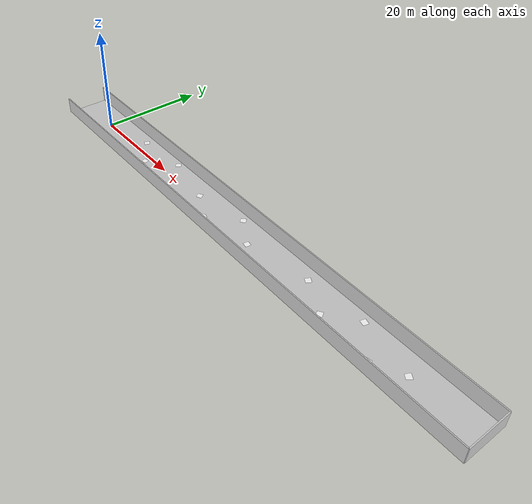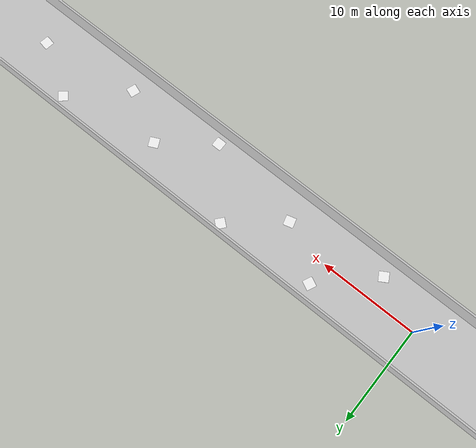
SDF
<?xml version="1.0" ?>
<sdf version="1.9">
  <world name="default">

    <physics name="1ms" type="ignore">
      <max_step_size>0.001</max_step_size>
      <real_time_factor>1.0</real_time_factor>
    </physics>

    <plugin filename="gz-sim-physics-system"
      name="gz::sim::systems::Physics">
    </plugin>

    <plugin
      filename="gz-sim-sensors-system"
      name="gz::sim::systems::Sensors">
      <render_engine>ogre2</render_engine>
    </plugin>

    <plugin filename="gz-sim-user-commands-system"
      name="gz::sim::systems::UserCommands">
    </plugin>
    <plugin filename="gz-sim-scene-broadcaster-system"
      name="gz::sim::systems::SceneBroadcaster">
    </plugin>

    <scene>
      <ambient>0.8 0.8 0.8 1</ambient>
      <background>0.4 0.4 0.4 1</background>
      <shadows>false</shadows>
    </scene>

    <light type="directional" name="sun">
      <cast_shadows>false</cast_shadows>
      <pose>0 0 20 0 0 0</pose>
      <diffuse>1 1 1 1</diffuse>
      <specular>0.0 0.0 0.0 1</specular>
      <direction>-0.5 0.1 -0.9</direction>
    </light>

    <!-- AXES -->

    <!-- ================= RUNWAY GROUND ================= -->
    <model name="runway_ground">
      <static>true</static>
      <pose>40 0 0 0 0 3.14159</pose>
      <link name="link">
        <collision name="collision">
          <geometry>
            <plane>
              <normal>0 0 1</normal>
              <size>100 8</size>
            </plane>
          </geometry>
        </collision>
        <visual name="visual">
          <cast_shadows>false</cast_shadows>
          <geometry>
            <plane>
              <normal>0 0 1</normal>
              <size>100 8</size>
            </plane>
          </geometry>
          <material>
            <ambient>0.8 0.8 0.8 1</ambient>
            <diffuse>0.8 0.8 0.8 1</diffuse>
            <specular>0.0 0.0 0.0 1</specular>
            <pbr>
              <metal>
                <albedo_map>file://materials/textures/runway.png</albedo_map>
                <roughness>1.0</roughness>
                <metalness>0</metalness>
              </metal>
            </pbr>
          </material>
        </visual>
      </link>
    </model>

    <!-- ================= WALLS ================= -->

    <!-- LEFT WALL — single box, texture stretched across full length -->
    <model name="wall_left">
      <static>true</static>
      <pose>40 4 1.5 0 0 0</pose>
      <link name="link">
        <collision name="collision">
          <geometry>
            <box><size>100 0.2 3</size></box>
          </geometry>
        </collision>
        <visual name="visual">
          <cast_shadows>false</cast_shadows>
          <geometry>
            <box><size>100 0.2 3</size></box>
          </geometry>
          <material>
            <ambient>0.8 0.8 0.8 1</ambient>
            <diffuse>0.8 0.8 0.8 1</diffuse>
            <specular>0.0 0.0 0.0 1</specular>
            <pbr>
              <metal>
                <albedo_map>file://materials/textures/plaster_bricks.jpg</albedo_map>
                <roughness>1.0</roughness>
                <metalness>0</metalness>
              </metal>
            </pbr>
          </material>
        </visual>
      </link>
    </model>

    <!-- RIGHT WALL -->
    <model name="wall_right">
      <static>true</static>
      <pose>40 -4 1.5 0 0 0</pose>
      <link name="link">
        <collision name="collision">
          <geometry>
            <box><size>100 0.2 3</size></box>
          </geometry>
        </collision>
        <visual name="visual">
          <cast_shadows>false</cast_shadows>
          <geometry>
            <box><size>100 0.2 3</size></box>
          </geometry>
          <material>
            <ambient>0.8 0.8 0.8 1</ambient>
            <diffuse>0.8 0.8 0.8 1</diffuse>
            <specular>0.0 0.0 0.0 1</specular>
            <pbr>
              <metal>
                <albedo_map>file://materials/textures/plaster_bricks.jpg</albedo_map>
                <roughness>1.0</roughness>
                <metalness>0</metalness>
              </metal>
            </pbr>
          </material>
        </visual>
      </link>
    </model>

    <!-- BACK WALL -->
    <model name="wall_back">
      <static>true</static>
      <pose>90 0 1.5 0 0 0</pose>
      <link name="link">
        <collision name="collision">
          <geometry>
            <box><size>0.2 8 3</size></box>
          </geometry>
        </collision>
        <visual name="visual">
          <cast_shadows>false</cast_shadows>
          <geometry>
            <box><size>0.2 8 3</size></box>
          </geometry>
          <material>
            <ambient>0.8 0.8 0.8 1</ambient>
            <diffuse>0.8 0.8 0.8 1</diffuse>
            <specular>0.0 0.0 0.0 1</specular>
            <pbr>
              <metal>
                <albedo_map>file://materials/textures/plaster_bricks.jpg</albedo_map>
                <roughness>1.0</roughness>
                <metalness>0</metalness>
              </metal>
            </pbr>
          </material>
        </visual>
      </link>
    </model>

  <!-- ================= CHECKERBOARD FEATURE BOARDS ================= -->
  <!-- 15 boards, x=5 to x=78, randomly placed and rotated -->

  <model name="board_01"><static>true</static><pose>5 -2.5 0.001 0 0 0.52</pose><link name="link"><visual name="visual"><geometry><box><size>1.0 1.0 0.001</size></box></geometry><material><ambient>1 1 1 1</ambient><diffuse>1 1 1 1</diffuse><pbr><metal><albedo_map>file://materials/media/checkerboard.png</albedo_map><roughness>1.0</roughness><metalness>0</metalness></metal></pbr></material></visual></link></model>

  <model name="board_02"><static>true</static><pose>10 2.3 0.001 0 0 1.13</pose><link name="link"><visual name="visual"><geometry><box><size>1.0 1.0 0.001</size></box></geometry><material><ambient>1 1 1 1</ambient><diffuse>1 1 1 1</diffuse><pbr><metal><albedo_map>file://materials/media/checkerboard.png</albedo_map><roughness>1.0</roughness><metalness>0</metalness></metal></pbr></material></visual></link></model>

  <model name="board_03"><static>true</static><pose>15 -1.2 0.001 0 0 0.27</pose><link name="link"><visual name="visual"><geometry><box><size>1.0 1.0 0.001</size></box></geometry><material><ambient>1 1 1 1</ambient><diffuse>1 1 1 1</diffuse><pbr><metal><albedo_map>file://materials/media/checkerboard.png</albedo_map><roughness>1.0</roughness><metalness>0</metalness></metal></pbr></material></visual></link></model>

  <model name="board_04"><static>true</static><pose>20 3.0 0.001 0 0 0.87</pose><link name="link"><visual name="visual"><geometry><box><size>1.0 1.0 0.001</size></box></geometry><material><ambient>1 1 1 1</ambient><diffuse>1 1 1 1</diffuse><pbr><metal><albedo_map>file://materials/media/checkerboard.png</albedo_map><roughness>1.0</roughness><metalness>0</metalness></metal></pbr></material></visual></link></model>

  <model name="board_05"><static>true</static><pose>25 -3.0 0.001 0 0 1.57</pose><link name="link"><visual name="visual"><geometry><box><size>1.0 1.0 0.001</size></box></geometry><material><ambient>1 1 1 1</ambient><diffuse>1 1 1 1</diffuse><pbr><metal><albedo_map>file://materials/media/checkerboard.png</albedo_map><roughness>1.0</roughness><metalness>0</metalness></metal></pbr></material></visual></link></model>

  <model name="board_06"><static>true</static><pose>30 0.8 0.001 0 0 0.44</pose><link name="link"><visual name="visual"><geometry><box><size>1.0 1.0 0.001</size></box></geometry><material><ambient>1 1 1 1</ambient><diffuse>1 1 1 1</diffuse><pbr><metal><albedo_map>file://materials/media/checkerboard.png</albedo_map><roughness>1.0</roughness><metalness>0</metalness></metal></pbr></material></visual></link></model>

  <model name="board_07"><static>true</static><pose>35 -2.0 0.001 0 0 1.22</pose><link name="link"><visual name="visual"><geometry><box><size>1.0 1.0 0.001</size></box></geometry><material><ambient>1 1 1 1</ambient><diffuse>1 1 1 1</diffuse><pbr><metal><albedo_map>file://materials/media/checkerboard.png</albedo_map><roughness>1.0</roughness><metalness>0</metalness></metal></pbr></material></visual></link></model>

  <model name="board_08"><static>true</static><pose>40 2.7 0.001 0 0 0.70</pose><link name="link"><visual name="visual"><geometry><box><size>1.0 1.0 0.001</size></box></geometry><material><ambient>1 1 1 1</ambient><diffuse>1 1 1 1</diffuse><pbr><metal><albedo_map>file://materials/media/checkerboard.png</albedo_map><roughness>1.0</roughness><metalness>0</metalness></metal></pbr></material></visual></link></model>

  <model name="board_09"><static>true</static><pose>45 -0.5 0.001 0 0 1.40</pose><link name="link"><visual name="visual"><geometry><box><size>1.0 1.0 0.001</size></box></geometry><material><ambient>1 1 1 1</ambient><diffuse>1 1 1 1</diffuse><pbr><metal><albedo_map>file://materials/media/checkerboard.png</albedo_map><roughness>1.0</roughness><metalness>0</metalness></metal></pbr></material></visual></link></model>

  <model name="board_10"><static>true</static><pose>51 -2.8 0.001 0 0 0.35</pose><link name="link"><visual name="visual"><geometry><box><size>1.0 1.0 0.001</size></box></geometry><material><ambient>1 1 1 1</ambient><diffuse>1 1 1 1</diffuse><pbr><metal><albedo_map>file://materials/media/checkerboard.png</albedo_map><roughness>1.0</roughness><metalness>0</metalness></metal></pbr></material></visual></link></model>

  <model name="board_11"><static>true</static><pose>57 1.8 0.001 0 0 1.05</pose><link name="link"><visual name="visual"><geometry><box><size>1.0 1.0 0.001</size></box></geometry><material><ambient>1 1 1 1</ambient><diffuse>1 1 1 1</diffuse><pbr><metal><albedo_map>file://materials/media/checkerboard.png</albedo_map><roughness>1.0</roughness><metalness>0</metalness></metal></pbr></material></visual></link></model>

  <model name="board_12"><static>true</static><pose>63 -1.5 0.001 0 0 0.61</pose><link name="link"><visual name="visual"><geometry><box><size>1.0 1.0 0.001</size></box></geometry><material><ambient>1 1 1 1</ambient><diffuse>1 1 1 1</diffuse><pbr><metal><albedo_map>file://materials/media/checkerboard.png</albedo_map><roughness>1.0</roughness><metalness>0</metalness></metal></pbr></material></visual></link></model>

  <model name="board_13"><static>true</static><pose>68 2.5 0.001 0 0 1.31</pose><link name="link"><visual name="visual"><geometry><box><size>1.0 1.0 0.001</size></box></geometry><material><ambient>1 1 1 1</ambient><diffuse>1 1 1 1</diffuse><pbr><metal><albedo_map>file://materials/media/checkerboard.png</albedo_map><roughness>1.0</roughness><metalness>0</metalness></metal></pbr></material></visual></link></model>

  <model name="board_14"><static>true</static><pose>73 -2.2 0.001 0 0 0.18</pose><link name="link"><visual name="visual"><geometry><box><size>1.0 1.0 0.001</size></box></geometry><material><ambient>1 1 1 1</ambient><diffuse>1 1 1 1</diffuse><pbr><metal><albedo_map>file://materials/media/checkerboard.png</albedo_map><roughness>1.0</roughness><metalness>0</metalness></metal></pbr></material></visual></link></model>

  <model name="board_15"><static>true</static><pose>78 0.3 0.001 0 0 0.96</pose><link name="link"><visual name="visual"><geometry><box><size>1.0 1.0 0.001</size></box></geometry><material><ambient>1 1 1 1</ambient><diffuse>1 1 1 1</diffuse><pbr><metal><albedo_map>file://materials/media/checkerboard.png</albedo_map><roughness>1.0</roughness><metalness>0</metalness></metal></pbr></material></visual></link></model>

  </world>
</sdf>
